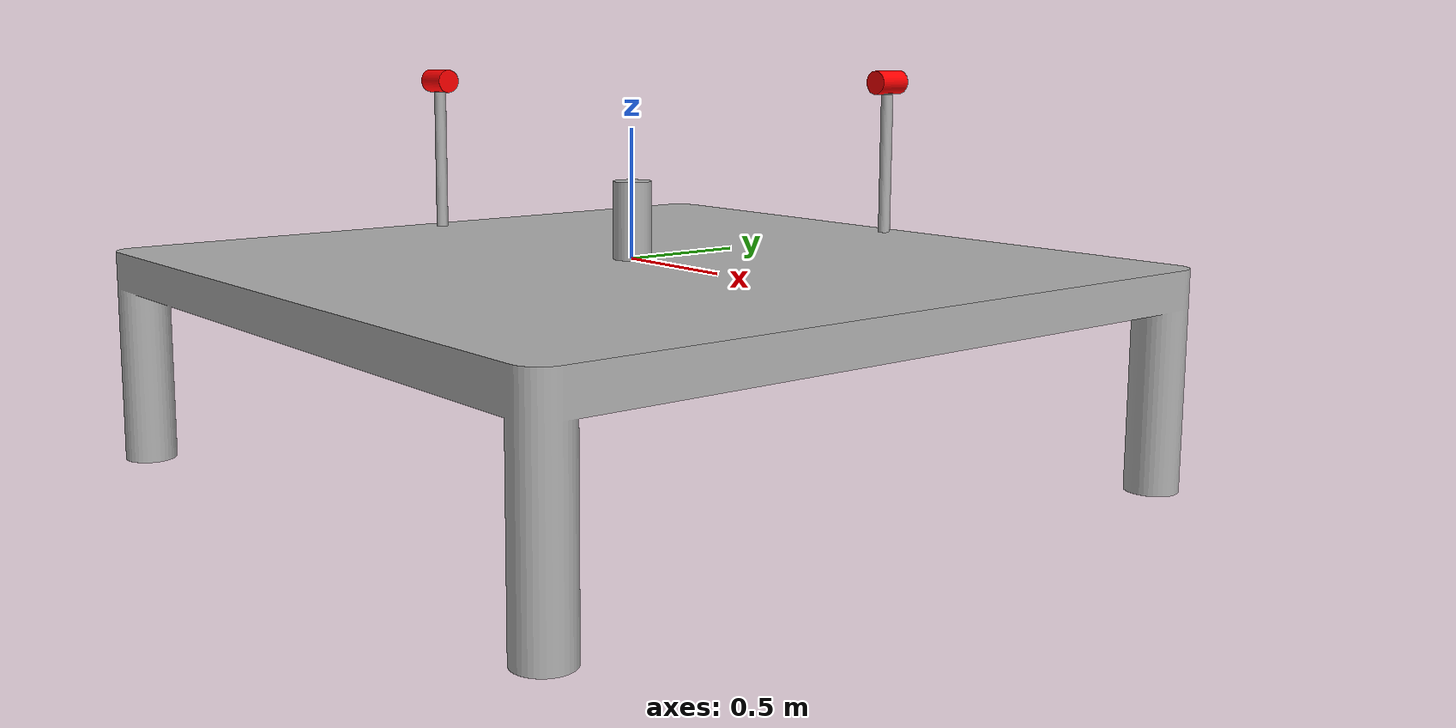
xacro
<?xml version="1.0"?>
<robot xmlns:xacro="http://www.ros.org/wiki/xacro" name="subassembly">

    <link name="base_footprint" >
        <visual>
            <geometry>
                <mesh filename="package://RobotDescription/meshes/others_subassembly/worktop.STL" />
            </geometry>
            <origin xyz="-1.5 1.5 -0.85" rpy="1.57079 0.0 0.0"/>
            <material name="LightGrey">
                <color rgba="0.7 0.7 0.7 1"/>
            </material>
        </visual>
        <collision>
            <geometry>
                <mesh filename="package://RobotDescription/meshes/others_subassembly/worktop.STL" />
                <origin xyz="-1.5 1.5 -0.85" rpy="1.57079 0.0 0.0"/>
            </geometry>
        </collision>
        <xacro:cylinder_inertial radius="1.5" length="1" mass="1000">
            <origin xyz="0.0 0.0 0.0" rpy="0 0 0" />
        </xacro:cylinder_inertial>
    </link>

    <gazebo reference="base_footprint">
        <material>Gazebo/White</material>
    </gazebo>

    <joint name="camera12basefootprint" type="fixed">
        <parent link="base_footprint" />
        <child link = "camera1" />
        <origin xyz="0.0 1.4 0.65" rpy="0.0 0.0 -1.57079" />
    </joint>

    <link name="camera1" >
        <visual>
            <geometry>
                <mesh filename="package://RobotDescription/meshes/others_subassembly/camera.STL" />
            </geometry>
            <origin xyz="-0.075 0.05 -0.05" rpy="1.57079 0.0 0.0"/>
            <material name="red">
                <color rgba="1 0 0 1.0"/>
            </material>
        </visual>
        <collision>
            <geometry>
                <mesh filename="package://RobotDescription/meshes/others_subassembly/camera.STL" />
                <origin xyz="-0.075 -0.05 -0.05" rpy="1.57079 0.0 0.0"/>
            </geometry>
        </collision>
        <xacro:cylinder_inertial radius="0.05" length="0.1" mass="0.5">
            <origin xyz="0.0 0.0 0.0" rpy="0 0 0" />
        </xacro:cylinder_inertial>
    </link>

    <gazebo reference="camera1">
        <material>Gazebo/Red</material>
    </gazebo>

    <joint name="camera22basefootprint" type="fixed">
        <parent link="base_footprint" />
        <child link = "camera2" />
        <origin xyz="-1.4 0 0.65" rpy="0.0 0.0 0.0" />
    </joint>

    <link name="camera2" >
        <visual>
            <geometry>
                <mesh filename="package://RobotDescription/meshes/others_subassembly/camera.STL" />
            </geometry>
            <origin xyz="-0.075 0.05 -0.05" rpy="1.57079 0.0 0.0"/>
            <material name="red">
                <color rgba="1 0 0 1.0"/>
            </material>
        </visual>
        <collision>
            <geometry>
                <mesh filename="package://RobotDescription/meshes/others_subassembly/camera.STL" />
                <origin xyz="-0.075 -0.05 -0.05" rpy="1.57079 0.0 0.0"/>
            </geometry>
        </collision>
        <xacro:cylinder_inertial radius="0.05" length="0.1" mass="0.5">
            <origin xyz="0.0 0.0 0.0" rpy="0 0 0" />
        </xacro:cylinder_inertial>
    </link>

    <gazebo reference="camera2">
        <material>Gazebo/Red</material>
    </gazebo>

</robot>
